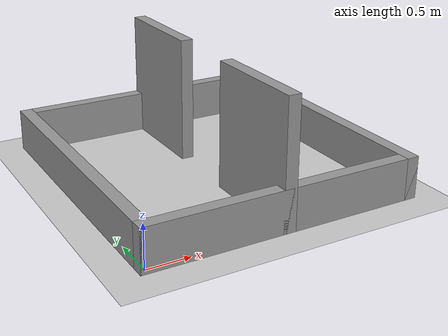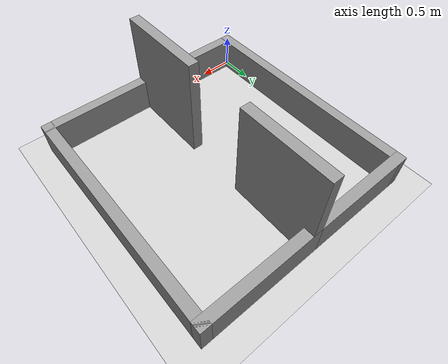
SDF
<sdf version="1.7">
 <world name="default">
  <light name="sun" type="directional">
   <pose>0 0 10 0 -0 0</pose>
   <diffuse>0.8 0.8 0.8 1</diffuse>
   <specular>0.2 0.2 0.2 1</specular>
   <attenuation>
    <range>1000</range>
    <constant>0.9</constant>
    <linear>0.01</linear>
    <quadratic>0.001</quadratic>
   </attenuation>
   <direction>-0.5 0.1 -0.9</direction>
   <spot><inner_angle>0</inner_angle><outer_angle>0</outer_angle><falloff>0</falloff></spot>
  </light>
  <model name="ground_plane">
   <static>1</static>
   <link name="link">
    <collision name="collision">
     <geometry><plane><normal>0 0 1</normal><size>100 100</size></plane></geometry>
     <surface>
      <contact><collide_bitmask>65535</collide_bitmask></contact>
      <friction><ode><mu>100</mu><mu2>50</mu2></ode></friction>
     </surface>
    </collision>
    <visual name="visual">
     <cast_shadows>0</cast_shadows>
     <geometry><plane><normal>0 0 1</normal><size>100 100</size></plane></geometry>
     <material>
      <script><uri>file://media/materials/scripts/gazebo.material</uri><name>Gazebo/Grey</name></script>
     </material>
    </visual>
   </link>
  </model>
  <gravity>0 0 -9.8</gravity>
  <magnetic_field>6e-06 2.3e-05 -4.2e-05</magnetic_field>
  <atmosphere type="adiabatic"/>
  <physics type="ode">
   <max_step_size>0.001</max_step_size>
   <real_time_factor>1</real_time_factor>
   <real_time_update_rate>1000</real_time_update_rate>
  </physics>
  <scene><ambient>0.4 0.4 0.4 1</ambient><background>0.7 0.7 0.7 1</background><shadows>1</shadows></scene>
  <spherical_coordinates>
   <surface_model>EARTH_WGS84</surface_model>
   <latitude_deg>0</latitude_deg>
   <longitude_deg>0</longitude_deg>
   <elevation>0</elevation>
   <heading_deg>0</heading_deg>
  </spherical_coordinates>
  <model name="door_traversal_model">
   <pose>1.6 1.675 0 0 -0 0</pose>
   <link name="Wall_0">
    <collision name="Wall_0_Collision">
     <geometry><box><size>1.75 0.15 0.5</size></box></geometry>
     <pose>0 0 0.25 0 -0 0</pose>
    </collision>
    <visual name="Wall_0_Visual">
     <pose>0 0 0.25 0 -0 0</pose>
     <geometry><box><size>1.75 0.15 0.5</size></box></geometry>
     <material>
      <script><uri>file://media/materials/scripts/gazebo.material</uri><name>Gazebo/Grey</name></script>
      <ambient>1 1 1 1</ambient>
     </material>
     <meta><layer>0</layer></meta>
    </visual>
    <pose>-0.8 -1.675 0 0 -0 0</pose>
   </link>
   <link name="Wall_2">
    <collision name="Wall_2_Collision">
     <geometry><box><size>3.5 0.15 0.5</size></box></geometry>
     <pose>0 0 0.25 0 -0 0</pose>
    </collision>
    <visual name="Wall_2_Visual">
     <pose>0 0 0.25 0 -0 0</pose>
     <geometry><box><size>3.5 0.15 0.5</size></box></geometry>
     <material>
      <script><uri>file://media/materials/scripts/gazebo.material</uri><name>Gazebo/Grey</name></script>
      <ambient>1 1 1 1</ambient>
     </material>
     <meta><layer>0</layer></meta>
    </visual>
    <pose>-1.6 0 0 0 -0 1.5708</pose>
   </link>
   <link name="Wall_3">
    <collision name="Wall_3_Collision">
     <geometry><box><size>1.75 0.15 0.5</size></box></geometry>
     <pose>0 0 0.25 0 -0 0</pose>
    </collision>
    <visual name="Wall_3_Visual">
     <pose>0 0 0.25 0 -0 0</pose>
     <geometry><box><size>1.75 0.15 0.5</size></box></geometry>
     <material>
      <script><uri>file://media/materials/scripts/gazebo.material</uri><name>Gazebo/Grey</name></script>
      <ambient>1 1 1 1</ambient>
     </material>
     <meta><layer>0</layer></meta>
    </visual>
    <pose>-0.8 1.675 0 0 -0 0</pose>
   </link>
   <link name="Wall_5">
    <pose>-0 0 0 0 -0 -1.5708</pose>
    <visual name="Wall_5_Visual_0">
     <pose>-1.1025 0 0.75 0 -0 0</pose>
     <geometry><box><size>1.295 0.15 1.5</size></box></geometry>
     <material>
      <script><uri>file://media/materials/scripts/gazebo.material</uri><name>Gazebo/Grey</name></script>
      <ambient>1 1 1 1</ambient>
     </material>
     <meta><layer>0</layer></meta>
    </visual>
    <collision name="Wall_5_Collision_0">
     <geometry><box><size>1.295 0.15 1.5</size></box></geometry>
     <pose>-1.1025 0 0.75 0 -0 0</pose>
    </collision>
    <visual name="Wall_5_Visual_1">
     <pose>1.0975 0 0.75 0 -0 0</pose>
     <geometry><box><size>1.305 0.15 1.5</size></box></geometry>
     <material>
      <script><uri>file://media/materials/scripts/gazebo.material</uri><name>Gazebo/Grey</name></script>
      <ambient>1 1 1 1</ambient>
     </material>
     <meta><layer>0</layer></meta>
    </visual>
    <collision name="Wall_5_Collision_1">
     <geometry><box><size>1.305 0.15 1.5</size></box></geometry>
     <pose>1.0975 0 0.75 0 -0 0</pose>
    </collision>
   </link>
   <link name="Wall_6">
    <collision name="Wall_6_Collision">
     <geometry><box><size>1.75 0.15 0.5</size></box></geometry>
     <pose>0 0 0.25 0 -0 0</pose>
    </collision>
    <visual name="Wall_6_Visual">
     <pose>0 0 0.25 0 -0 0</pose>
     <geometry><box><size>1.75 0.15 0.5</size></box></geometry>
     <material>
      <script><uri>file://media/materials/scripts/gazebo.material</uri><name>Gazebo/Grey</name></script>
      <ambient>1 1 1 1</ambient>
     </material>
     <meta><layer>0</layer></meta>
    </visual>
    <pose>0.8 -1.675 0 0 -0 0</pose>
   </link>
   <link name="Wall_7">
    <collision name="Wall_7_Collision">
     <geometry><box><size>3.5 0.15 0.5</size></box></geometry>
     <pose>0 0 0.25 0 -0 0</pose>
    </collision>
    <visual name="Wall_7_Visual">
     <pose>0 0 0.25 0 -0 0</pose>
     <geometry><box><size>3.5 0.15 0.5</size></box></geometry>
     <material>
      <script><uri>file://media/materials/scripts/gazebo.material</uri><name>Gazebo/Grey</name></script>
      <ambient>1 1 1 1</ambient>
     </material>
     <meta><layer>0</layer></meta>
    </visual>
    <pose>1.6 0 0 0 -0 1.5708</pose>
   </link>
   <link name="Wall_8">
    <collision name="Wall_8_Collision">
     <geometry><box><size>1.75 0.15 0.5</size></box></geometry>
     <pose>0 0 0.25 0 -0 0</pose>
    </collision>
    <visual name="Wall_8_Visual">
     <pose>0 0 0.25 0 -0 0</pose>
     <geometry><box><size>1.75 0.15 0.5</size></box></geometry>
     <material>
      <script><uri>file://media/materials/scripts/gazebo.material</uri><name>Gazebo/Grey</name></script>
      <ambient>1 1 1 1</ambient>
     </material>
     <meta><layer>0</layer></meta>
    </visual>
    <pose>0.8 1.675 0 0 -0 3.14159</pose>
   </link>
   <static>1</static>
  </model>
 </world>
</sdf>
